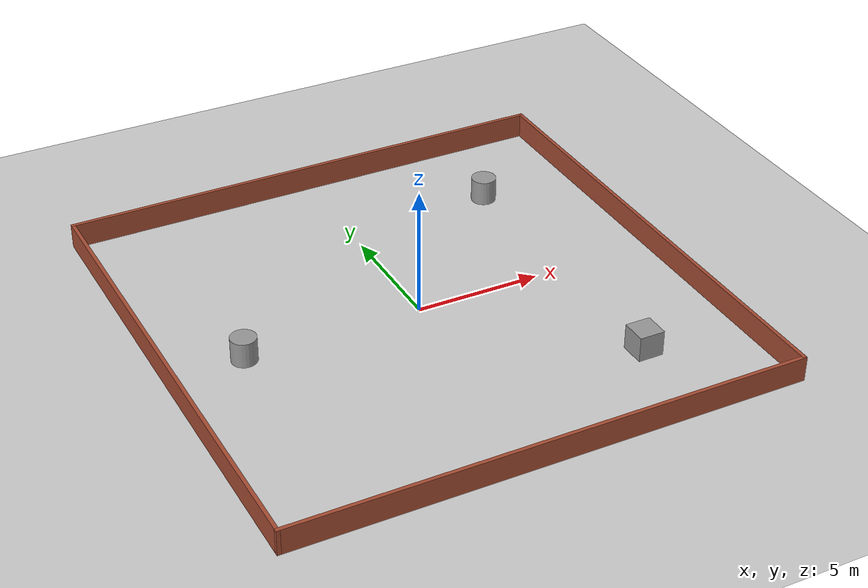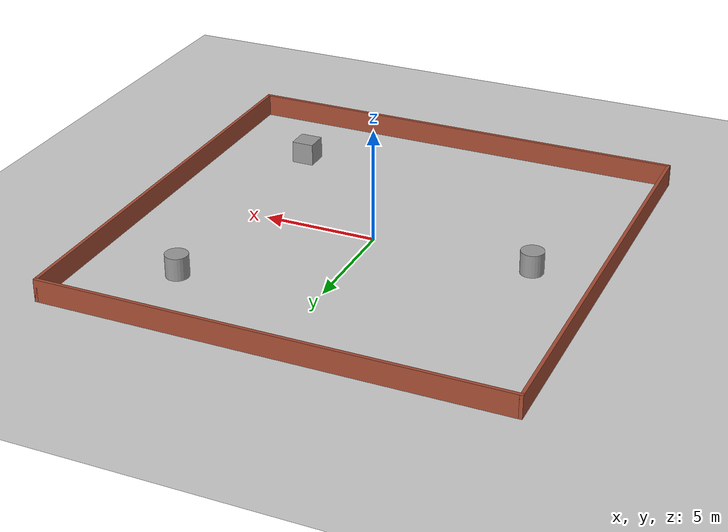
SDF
<sdf version="1.7">
 <world name="default">
  <light name="sun" type="directional">
   <pose>0 0 10 0 -0 0</pose>
   <diffuse>0.8 0.8 0.8 1</diffuse>
   <specular>0.2 0.2 0.2 1</specular>
   <attenuation>
    <range>1000</range>
    <constant>0.9</constant>
    <linear>0.01</linear>
    <quadratic>0.001</quadratic>
   </attenuation>
   <direction>-0.5 0.1 -0.9</direction>
   <spot><inner_angle>0</inner_angle><outer_angle>0</outer_angle><falloff>0</falloff></spot>
  </light>
  <model name="ground_plane">
   <static>1</static>
   <link name="link">
    <collision name="collision">
     <geometry><plane><normal>0 0 1</normal><size>100 100</size></plane></geometry>
     <surface>
      <contact><collide_bitmask>65535</collide_bitmask></contact>
      <friction><ode><mu>100</mu><mu2>50</mu2></ode></friction>
     </surface>
    </collision>
    <visual name="visual">
     <cast_shadows>0</cast_shadows>
     <geometry><plane><normal>0 0 1</normal><size>100 100</size></plane></geometry>
     <material>
      <script><uri>file://media/materials/scripts/gazebo.material</uri><name>Gazebo/Grey</name></script>
     </material>
    </visual>
   </link>
  </model>
  <gravity>0 0 -9.8</gravity>
  <magnetic_field>6e-06 2.3e-05 -4.2e-05</magnetic_field>
  <atmosphere type="adiabatic"/>
  <physics type="ode">
   <max_step_size>0.001</max_step_size>
   <real_time_factor>1</real_time_factor>
   <real_time_update_rate>1000</real_time_update_rate>
  </physics>
  <scene><ambient>0.4 0.4 0.4 1</ambient><background>0.7 0.7 0.7 1</background><shadows>1</shadows></scene>
  <spherical_coordinates>
   <surface_model>EARTH_WGS84</surface_model>
   <latitude_deg>0</latitude_deg>
   <longitude_deg>0</longitude_deg>
   <elevation>0</elevation>
   <heading_deg>0</heading_deg>
  </spherical_coordinates>
  <model name="t3_building_floor">
   <link name="Wall_0">
    <pose>0 10 0 0 -0 0</pose>
    <visual name="Wall_0_Visual">
     <pose>0 0 0.5 0 -0 0</pose>
     <geometry><box><size>20.15 0.15 1</size></box></geometry>
     <material>
      <script><uri>file://media/materials/scripts/gazebo.material</uri><name>Gazebo/Bricks</name></script>
      <ambient>1 1 1 1</ambient>
      <shader type="pixel"/>
     </material>
     <meta><layer>0</layer></meta>
    </visual>
    <collision name="Wall_0_Collision">
     <pose>0 0 0.5 0 -0 0</pose>
     <geometry><box><size>20.15 0.15 1</size></box></geometry>
     <surface>
      <friction>
       <ode><mu>1</mu><mu2>1</mu2><fdir1>0 0 0</fdir1><slip1>0</slip1><slip2>0</slip2></ode>
       <torsional>
        <coefficient>1</coefficient>
        <patch_radius>0</patch_radius>
        <surface_radius>0</surface_radius>
        <use_patch_radius>1</use_patch_radius>
        <ode><slip>0</slip></ode>
       </torsional>
      </friction>
      <bounce><restitution_coefficient>0</restitution_coefficient><threshold>1e+06</threshold></bounce>
      <contact>
       <collide_without_contact>0</collide_without_contact>
       <collide_without_contact_bitmask>1</collide_without_contact_bitmask>
       <collide_bitmask>1</collide_bitmask>
       <ode>
        <soft_cfm>0</soft_cfm>
        <soft_erp>0.2</soft_erp>
        <kp>1e+13</kp>
        <kd>1</kd>
        <max_vel>0.01</max_vel>
        <min_depth>0</min_depth>
       </ode>
       <bullet>
        <split_impulse>1</split_impulse>
        <split_impulse_penetration_threshold>-0.01</split_impulse_penetration_threshold>
        <soft_cfm>0</soft_cfm>
        <soft_erp>0.2</soft_erp>
        <kp>1e+13</kp>
        <kd>1</kd>
       </bullet>
      </contact>
     </surface>
    </collision>
   </link>
   <link name="Wall_1">
    <pose>10 0 0 0 0 -1.5708</pose>
    <visual name="Wall_1_Visual">
     <pose>0 0 0.5 0 -0 0</pose>
     <geometry><box><size>20.15 0.15 1</size></box></geometry>
     <material>
      <script><uri>file://media/materials/scripts/gazebo.material</uri><name>Gazebo/Bricks</name></script>
      <ambient>1 1 1 1</ambient>
      <shader type="pixel"/>
     </material>
     <meta><layer>0</layer></meta>
    </visual>
    <collision name="Wall_1_Collision">
     <pose>0 0 0.5 0 -0 0</pose>
     <geometry><box><size>20.15 0.15 1</size></box></geometry>
     <surface>
      <friction>
       <ode><mu>1</mu><mu2>1</mu2><fdir1>0 0 0</fdir1><slip1>0</slip1><slip2>0</slip2></ode>
       <torsional>
        <coefficient>1</coefficient>
        <patch_radius>0</patch_radius>
        <surface_radius>0</surface_radius>
        <use_patch_radius>1</use_patch_radius>
        <ode><slip>0</slip></ode>
       </torsional>
      </friction>
      <bounce><restitution_coefficient>0</restitution_coefficient><threshold>1e+06</threshold></bounce>
      <contact>
       <collide_without_contact>0</collide_without_contact>
       <collide_without_contact_bitmask>1</collide_without_contact_bitmask>
       <collide_bitmask>1</collide_bitmask>
       <ode>
        <soft_cfm>0</soft_cfm>
        <soft_erp>0.2</soft_erp>
        <kp>1e+13</kp>
        <kd>1</kd>
        <max_vel>0.01</max_vel>
        <min_depth>0</min_depth>
       </ode>
       <bullet>
        <split_impulse>1</split_impulse>
        <split_impulse_penetration_threshold>-0.01</split_impulse_penetration_threshold>
        <soft_cfm>0</soft_cfm>
        <soft_erp>0.2</soft_erp>
        <kp>1e+13</kp>
        <kd>1</kd>
       </bullet>
      </contact>
     </surface>
    </collision>
   </link>
   <link name="Wall_2">
    <pose>0 -10 0 0 -0 3.14159</pose>
    <visual name="Wall_2_Visual">
     <pose>0 0 0.5 0 -0 0</pose>
     <geometry><box><size>20.15 0.15 1</size></box></geometry>
     <material>
      <script><uri>file://media/materials/scripts/gazebo.material</uri><name>Gazebo/Bricks</name></script>
      <ambient>1 1 1 1</ambient>
      <shader type="pixel"/>
     </material>
     <meta><layer>0</layer></meta>
    </visual>
    <collision name="Wall_2_Collision">
     <pose>0 0 0.5 0 -0 0</pose>
     <geometry><box><size>20.15 0.15 1</size></box></geometry>
     <surface>
      <friction>
       <ode><mu>1</mu><mu2>1</mu2><fdir1>0 0 0</fdir1><slip1>0</slip1><slip2>0</slip2></ode>
       <torsional>
        <coefficient>1</coefficient>
        <patch_radius>0</patch_radius>
        <surface_radius>0</surface_radius>
        <use_patch_radius>1</use_patch_radius>
        <ode><slip>0</slip></ode>
       </torsional>
      </friction>
      <bounce><restitution_coefficient>0</restitution_coefficient><threshold>1e+06</threshold></bounce>
      <contact>
       <collide_without_contact>0</collide_without_contact>
       <collide_without_contact_bitmask>1</collide_without_contact_bitmask>
       <collide_bitmask>1</collide_bitmask>
       <ode>
        <soft_cfm>0</soft_cfm>
        <soft_erp>0.2</soft_erp>
        <kp>1e+13</kp>
        <kd>1</kd>
        <max_vel>0.01</max_vel>
        <min_depth>0</min_depth>
       </ode>
       <bullet>
        <split_impulse>1</split_impulse>
        <split_impulse_penetration_threshold>-0.01</split_impulse_penetration_threshold>
        <soft_cfm>0</soft_cfm>
        <soft_erp>0.2</soft_erp>
        <kp>1e+13</kp>
        <kd>1</kd>
       </bullet>
      </contact>
     </surface>
    </collision>
   </link>
   <link name="Wall_3">
    <pose>-10 0 0 0 -0 1.5708</pose>
    <visual name="Wall_3_Visual">
     <pose>0 0 0.5 0 -0 0</pose>
     <geometry><box><size>20.15 0.15 1</size></box></geometry>
     <material>
      <script><uri>file://media/materials/scripts/gazebo.material</uri><name>Gazebo/Bricks</name></script>
      <ambient>1 1 1 1</ambient>
      <shader type="pixel"/>
     </material>
     <meta><layer>0</layer></meta>
    </visual>
    <collision name="Wall_3_Collision">
     <pose>0 0 0.5 0 -0 0</pose>
     <geometry><box><size>20.15 0.15 1</size></box></geometry>
     <surface>
      <friction>
       <ode><mu>1</mu><mu2>1</mu2><fdir1>0 0 0</fdir1><slip1>0</slip1><slip2>0</slip2></ode>
       <torsional>
        <coefficient>1</coefficient>
        <patch_radius>0</patch_radius>
        <surface_radius>0</surface_radius>
        <use_patch_radius>1</use_patch_radius>
        <ode><slip>0</slip></ode>
       </torsional>
      </friction>
      <bounce><restitution_coefficient>0</restitution_coefficient><threshold>1e+06</threshold></bounce>
      <contact>
       <collide_without_contact>0</collide_without_contact>
       <collide_without_contact_bitmask>1</collide_without_contact_bitmask>
       <collide_bitmask>1</collide_bitmask>
       <ode>
        <soft_cfm>0</soft_cfm>
        <soft_erp>0.2</soft_erp>
        <kp>1e+13</kp>
        <kd>1</kd>
        <max_vel>0.01</max_vel>
        <min_depth>0</min_depth>
       </ode>
       <bullet>
        <split_impulse>1</split_impulse>
        <split_impulse_penetration_threshold>-0.01</split_impulse_penetration_threshold>
        <soft_cfm>0</soft_cfm>
        <soft_erp>0.2</soft_erp>
        <kp>1e+13</kp>
        <kd>1</kd>
       </bullet>
      </contact>
     </surface>
    </collision>
   </link>
   <static>1</static>
  </model>
  <model name="t3_floor_model">
   <link name="link_0">
    <inertial>
     <mass>1</mass>
     <inertia>
      <ixx>0.166667</ixx>
      <ixy>0</ixy>
      <ixz>0</ixz>
      <iyy>0.166667</iyy>
      <iyz>0</iyz>
      <izz>0.166667</izz>
     </inertia>
    </inertial>
    <pose>4.33333 -6 0 0 -0 0</pose>
    <visual name="visual">
     <geometry><box><size>1 1 1</size></box></geometry>
     <material>
      <lighting>1</lighting>
      <script><uri>file://media/materials/scripts/gazebo.material</uri><name>Gazebo/Grey</name></script>
      <shader type="pixel"><normal_map>__default__</normal_map></shader>
      <ambient>0.3 0.3 0.3 1</ambient>
      <diffuse>0.7 0.7 0.7 1</diffuse>
      <specular>0.01 0.01 0.01 1</specular>
      <emissive>0 0 0 1</emissive>
     </material>
    </visual>
    <collision name="collision">
     <geometry><box><size>1 1 1</size></box></geometry>
     <surface>
      <friction>
       <ode><mu>1</mu><mu2>1</mu2><fdir1>0 0 0</fdir1><slip1>0</slip1><slip2>0</slip2></ode>
       <torsional>
        <coefficient>1</coefficient>
        <patch_radius>0</patch_radius>
        <surface_radius>0</surface_radius>
        <use_patch_radius>1</use_patch_radius>
        <ode><slip>0</slip></ode>
       </torsional>
      </friction>
      <bounce><restitution_coefficient>0</restitution_coefficient><threshold>1e+06</threshold></bounce>
      <contact>
       <collide_without_contact>0</collide_without_contact>
       <collide_without_contact_bitmask>1</collide_without_contact_bitmask>
       <collide_bitmask>1</collide_bitmask>
       <ode>
        <soft_cfm>0</soft_cfm>
        <soft_erp>0.2</soft_erp>
        <kp>1e+13</kp>
        <kd>1</kd>
        <max_vel>0.01</max_vel>
        <min_depth>0</min_depth>
       </ode>
       <bullet>
        <split_impulse>1</split_impulse>
        <split_impulse_penetration_threshold>-0.01</split_impulse_penetration_threshold>
        <soft_cfm>0</soft_cfm>
        <soft_erp>0.2</soft_erp>
        <kp>1e+13</kp>
        <kd>1</kd>
       </bullet>
      </contact>
     </surface>
    </collision>
   </link>
   <link name="link_1">
    <inertial>
     <mass>1</mass>
     <inertia><ixx>0.145833</ixx><ixy>0</ixy><ixz>0</ixz><iyy>0.145833</iyy><iyz>0</iyz><izz>0.125</izz></inertia>
    </inertial>
    <pose>4.33333 6 0 0 -0 0</pose>
    <visual name="visual">
     <geometry><cylinder><radius>0.5</radius><length>1</length></cylinder></geometry>
     <material>
      <lighting>1</lighting>
      <script><uri>file://media/materials/scripts/gazebo.material</uri><name>Gazebo/Grey</name></script>
      <shader type="pixel"><normal_map>__default__</normal_map></shader>
      <ambient>0.3 0.3 0.3 1</ambient>
      <diffuse>0.7 0.7 0.7 1</diffuse>
      <specular>0.01 0.01 0.01 1</specular>
      <emissive>0 0 0 1</emissive>
     </material>
    </visual>
    <collision name="collision">
     <geometry><cylinder><radius>0.5</radius><length>1</length></cylinder></geometry>
     <surface>
      <friction>
       <ode><mu>1</mu><mu2>1</mu2><fdir1>0 0 0</fdir1><slip1>0</slip1><slip2>0</slip2></ode>
       <torsional>
        <coefficient>1</coefficient>
        <patch_radius>0</patch_radius>
        <surface_radius>0</surface_radius>
        <use_patch_radius>1</use_patch_radius>
        <ode><slip>0</slip></ode>
       </torsional>
      </friction>
      <bounce><restitution_coefficient>0</restitution_coefficient><threshold>1e+06</threshold></bounce>
      <contact>
       <collide_without_contact>0</collide_without_contact>
       <collide_without_contact_bitmask>1</collide_without_contact_bitmask>
       <collide_bitmask>1</collide_bitmask>
       <ode>
        <soft_cfm>0</soft_cfm>
        <soft_erp>0.2</soft_erp>
        <kp>1e+13</kp>
        <kd>1</kd>
        <max_vel>0.01</max_vel>
        <min_depth>0</min_depth>
       </ode>
       <bullet>
        <split_impulse>1</split_impulse>
        <split_impulse_penetration_threshold>-0.01</split_impulse_penetration_threshold>
        <soft_cfm>0</soft_cfm>
        <soft_erp>0.2</soft_erp>
        <kp>1e+13</kp>
        <kd>1</kd>
       </bullet>
      </contact>
     </surface>
    </collision>
   </link>
   <link name="link_2">
    <inertial>
     <mass>1</mass>
     <inertia><ixx>0.145833</ixx><ixy>0</ixy><ixz>0</ixz><iyy>0.145833</iyy><iyz>0</iyz><izz>0.125</izz></inertia>
    </inertial>
    <pose>-8.66667 0 0 0 -0 0</pose>
    <visual name="visual">
     <geometry><cylinder><radius>0.5</radius><length>1</length></cylinder></geometry>
     <material>
      <lighting>1</lighting>
      <script><uri>file://media/materials/scripts/gazebo.material</uri><name>Gazebo/Grey</name></script>
      <shader type="pixel"><normal_map>__default__</normal_map></shader>
      <ambient>0.3 0.3 0.3 1</ambient>
      <diffuse>0.7 0.7 0.7 1</diffuse>
      <specular>0.01 0.01 0.01 1</specular>
      <emissive>0 0 0 1</emissive>
     </material>
    </visual>
    <collision name="collision">
     <geometry><cylinder><radius>0.5</radius><length>1</length></cylinder></geometry>
     <surface>
      <friction>
       <ode><mu>1</mu><mu2>1</mu2><fdir1>0 0 0</fdir1><slip1>0</slip1><slip2>0</slip2></ode>
       <torsional>
        <coefficient>1</coefficient>
        <patch_radius>0</patch_radius>
        <surface_radius>0</surface_radius>
        <use_patch_radius>1</use_patch_radius>
        <ode><slip>0</slip></ode>
       </torsional>
      </friction>
      <bounce><restitution_coefficient>0</restitution_coefficient><threshold>1e+06</threshold></bounce>
      <contact>
       <collide_without_contact>0</collide_without_contact>
       <collide_without_contact_bitmask>1</collide_without_contact_bitmask>
       <collide_bitmask>1</collide_bitmask>
       <ode>
        <soft_cfm>0</soft_cfm>
        <soft_erp>0.2</soft_erp>
        <kp>1e+13</kp>
        <kd>1</kd>
        <max_vel>0.01</max_vel>
        <min_depth>0</min_depth>
       </ode>
       <bullet>
        <split_impulse>1</split_impulse>
        <split_impulse_penetration_threshold>-0.01</split_impulse_penetration_threshold>
        <soft_cfm>0</soft_cfm>
        <soft_erp>0.2</soft_erp>
        <kp>1e+13</kp>
        <kd>1</kd>
       </bullet>
      </contact>
     </surface>
    </collision>
   </link>
   <static>0</static>
   <pose>1.66667 0 0.5 0 -0 0</pose>
  </model>
 </world>
</sdf>
